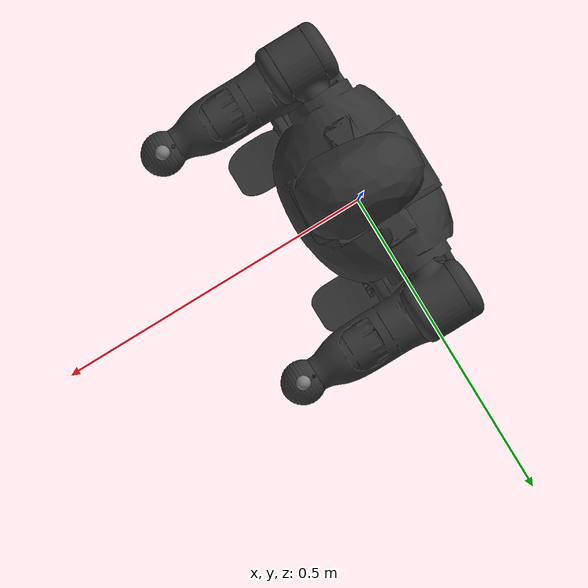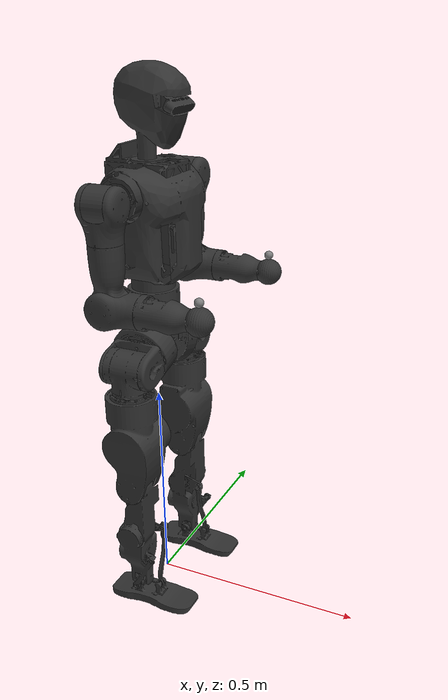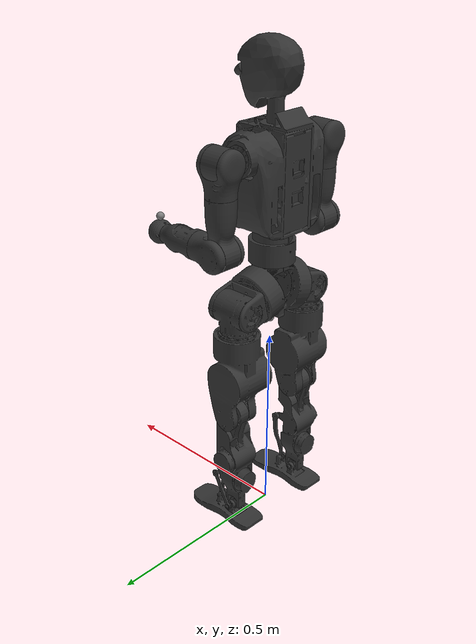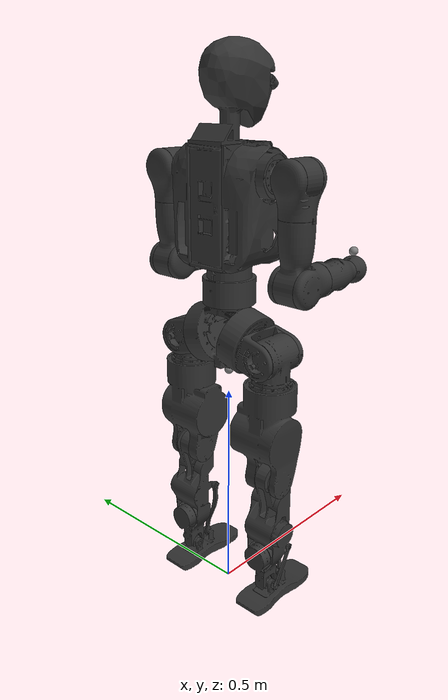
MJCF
<mujoco model="N1_mocap">
    <compiler angle="radian" meshdir="assets" autolimits="true"/>

    <default>
        <default class="N1">
            <default class="visual">
                <geom group="2" type="mesh" density="0" material="silver" contype="0" conaffinity="0"/>
            </default>
            <default class="collision">
                <geom group="3" rgba=".2 .6 .2 .3" contype="1" conaffinity="1"/>
                <default class="foot_capsule">
                    <geom type="capsule" size="0.01"/>
                </default>
            </default>
            <site group="5" rgba="1 0 0 1"/>
        </default>
    </default>

    <asset>
        <material name="silver" rgba="0.7 0.7 0.7 1"/>
        <material name="black" rgba="0.2 0.2 0.2 1"/>
        <mesh name="base_link" content_type="model/stl" file="base_link.STL"/>
        <mesh name="torso_link" content_type="model/stl" file="torso_link.STL"/>
        <mesh name="camera_link" content_type="model/stl" file="camera_link.STL"/>
        <mesh name="imu_link" content_type="model/stl" file="imu_link.STL"/>

        <!-- left leg -->
        <mesh name="left_thigh_pitch_link" content_type="model/stl" file="left_thigh_pitch_link.STL"/>
        <mesh name="left_thigh_roll_link" content_type="model/stl" file="left_thigh_roll_link.STL"/>
        <mesh name="left_thigh_yaw_link" content_type="model/stl" file="left_thigh_yaw_link.STL"/>
        <mesh name="left_shank_pitch_link" content_type="model/stl" file="left_shank_pitch_link.STL"/>
        <mesh name="left_foot_roll_link" content_type="model/stl" file="left_foot_roll_link.STL"/>
        <mesh name="left_foot_pitch_link" content_type="model/stl" file="left_foot_pitch_link.STL"/>

        <!-- right leg -->
        <mesh name="right_thigh_pitch_link" content_type="model/stl" file="right_thigh_pitch_link.STL"/>
        <mesh name="right_thigh_roll_link" content_type="model/stl" file="right_thigh_roll_link.STL"/>
        <mesh name="right_thigh_yaw_link" content_type="model/stl" file="right_thigh_yaw_link.STL"/>
        <mesh name="right_shank_pitch_link" content_type="model/stl" file="right_shank_pitch_link.STL"/>
        <mesh name="right_foot_roll_link" content_type="model/stl" file="right_foot_roll_link.STL"/>
        <mesh name="right_foot_pitch_link" content_type="model/stl" file="right_foot_pitch_link.STL"/>

        <!-- waist -->
        <mesh name="waist_yaw_link" content_type="model/stl" file="waist_yaw_link.STL"/>

        <!-- left arm -->
        <mesh name="left_upper_arm_pitch_link" content_type="model/stl" file="left_upper_arm_pitch_link.STL"/>
        <mesh name="left_upper_arm_roll_link" content_type="model/stl" file="left_upper_arm_roll_link.STL"/>
        <mesh name="left_upper_arm_yaw_link" content_type="model/stl" file="left_upper_arm_yaw_link.STL"/>
        <mesh name="left_lower_arm_pitch_link" content_type="model/stl" file="left_lower_arm_pitch_link.STL"/>
        <mesh name="left_hand_yaw_link" content_type="model/stl" file="left_hand_yaw_link.STL"/>
        <mesh name="left_end_effector_link" content_type="model/stl" file="left_end_effector_link.STL"/>

        <!-- right arm -->
        <mesh name="right_upper_arm_pitch_link" content_type="model/stl" file="right_upper_arm_pitch_link.STL"/>
        <mesh name="right_upper_arm_roll_link" content_type="model/stl" file="right_upper_arm_roll_link.STL"/>
        <mesh name="right_upper_arm_yaw_link" content_type="model/stl" file="right_upper_arm_yaw_link.STL"/>
        <mesh name="right_lower_arm_pitch_link" content_type="model/stl" file="right_lower_arm_pitch_link.STL"/>
        <mesh name="right_hand_yaw_link" content_type="model/stl" file="right_hand_yaw_link.STL"/>
        <mesh name="right_end_effector_link" content_type="model/stl" file="right_end_effector_link.STL"/>
    </asset>

    <worldbody>

        <body name="base_link" pos="0 0 0.70">

            <light pos="0 0 2" mode="trackcom"/>
             <camera name="tracking" pos="1.734 -1.135 .35" xyaxes="0.552 0.834 -0.000 -0.170 0.112 0.979" mode="trackcom"/>
            <inertial pos="0.00025493 1.049e-05 -0.05502" quat="0.704566 0.709615 0.00402273 -0.00405522" mass="3.18"
                      diaginertia="0.0111393 0.00899019 0.00761893"/>
                     <!-- Add freejoint will add additional 7 dofs -->
            <freejoint name="base_free_joint"/>
            <geom class="visual" material="black" mesh="base_link"/>
            <geom name="pelvis_collision" class="collision" type="sphere" size="0.07" pos="0 0 -0.07"/>
            <site name="imu_in_pelvis" size="0.01" pos="0.0 0 -0.1472"/>
            <!-- left leg -->
            <body name="left_thigh_pitch_link" pos="0 0.050453 -0.067365" quat="0.991445 -0.130526 0 0">
                <inertial pos="-0.017114 0.035514 0.00025368" quat="0.233743 0.664829 -0.241027 0.667287" mass="1.31"
                          diaginertia="0.00353445 0.00312547 0.00141578"/>
                <joint name="left_hip_pitch_joint" pos="0 0 0" axis="0 1 0" range="-2.617 2.617"/>
                <geom class="visual" material="black" mesh="left_thigh_pitch_link"/>

                <body name="left_thigh_roll_link" pos="0 0.072 0" quat="0.991445 0.130526 0 0">
                    <inertial pos="-0.0029103 -4.92e-06 -0.020023" quat="0.997816 -0.00139921 -0.0625676 -0.0211339"
                              mass="1.35" diaginertia="0.00189889 0.00182639 0.00129812"/>
                    <joint name="left_hip_roll_joint" pos="0 0 0" axis="1 0 0" range="-0.261 1.57"/>
                    <geom class="visual" material="black" mesh="left_thigh_roll_link"/>

                    <geom name="left_hip_collision" class="collision" type="capsule" size="0.06"
                          fromto="0.02 0 0 0.02 0 -0.07"/>
                    <body name="left_thigh_yaw_link" pos="0 0 -0.0815">
                        <inertial pos="0.0021441 -0.010608 -0.086616" quat="0.468171 -0.0465258 0.0232059 0.882107"
                                  mass="3.37" diaginertia="0.0149854 0.0146941 0.0052015"/>
                        <joint name="left_hip_yaw_joint" pos="0 0 0" axis="0 0 1" range="-2.617 2.617"/>
                        <geom class="visual" material="black" mesh="left_thigh_yaw_link"/>

                        <geom name="left_thigh_collision" class="collision" type="capsule" size="0.06"
                              fromto="-0.0 0 -0.03 -0.0 0 -0.17"/>
                        <body name="left_shank_pitch_link" pos="0 0 -0.2075">
                            <inertial pos="0.0027736 0.0049964 -0.13547" quat="0.865626 -0.00504699 0.0114018 0.500536"
                                      mass="2.21" diaginertia="0.0135888 0.0135126 0.00161696"/>
                            <joint name="left_knee_pitch_joint" pos="0 0 0" axis="0 1 0" range="-0.0872 2.356"/>
                            <geom class="visual" material="black" mesh="left_shank_pitch_link"/>

                            <geom name="left_shin_collision" class="collision" type="capsule" size="0.055"
                                  fromto="0.01 0 0 0.01 0 -0.15"/>
                            <geom name="left_linkage_brace_collision" class="collision" type="capsule" size="0.035"
                                  fromto="0.01 0 -0.2 0.01 0 -0.25"/>
                            <body name="left_foot_roll_link" pos="0 0 -0.28">
                                <inertial pos="0 0.0018625 0" quat="0.5 0.5 -0.5 0.5" mass="0.113"
                                          diaginertia="2.927e-05 2.49e-05 1.175e-05"/>
                                <joint name="left_ankle_roll_joint" pos="0 0 0" axis="1 0 0" range="-0.436 0.436"/>
                                <geom class="visual" material="black" mesh="left_foot_roll_link"/>

                                <body name="left_foot_pitch_link">
                                    <inertial pos="0.031083 -0.00011033 -0.031859"
                                              quat="5.38314e-05 0.70921 -0.0030347 0.704991" mass="0.528"
                                              diaginertia="0.00183246 0.00168042 0.000253637"/>
                                    <site name="left_foot" rgba="1 0 0 1" pos="0.04 0 -0.037"/>
                                    <joint name="left_ankle_pitch_joint" pos="0 0 0" axis="0 1 0" range="-0.785 0.785"/>
                                    <geom class="visual" material="black" mesh="left_foot_pitch_link"/>
                                    <geom name="left_foot1_collision" class="foot_capsule"
                                          fromto="0.1 -0.026 -0.035 0.05 -0.027 -0.035"/>
                                    <geom name="left_foot2_collision" class="foot_capsule"
                                          fromto="-0.044 -0.018 -0.035 0.123 -0.018 -0.035"/>
                                    <geom name="left_foot3_collision" class="foot_capsule"
                                          fromto="-0.052 -0.01 -0.035 0.13 -0.01 -0.035"/>
                                    <geom name="left_foot4_collision" class="foot_capsule"
                                          fromto="-0.054 0 -0.035 0.132 0 -0.035"/>
                                    <geom name="left_foot5_collision" class="foot_capsule"
                                          fromto="-0.052 0.01 -0.035 0.13 0.01 -0.035"/>
                                    <geom name="left_foot6_collision" class="foot_capsule"
                                          fromto="-0.044 0.018 -0.035 0.123 0.018 -0.035"/>
                                    <geom name="left_foot7_collision" class="foot_capsule"
                                          fromto="0.1 0.026 -0.035 0.05 0.026 -0.035"/>
                                </body>
                            </body>
                        </body>
                    </body>
                </body>
            </body>

            <!-- right leg -->
            <body name="right_thigh_pitch_link" pos="0 -0.050453 -0.067365" quat="0.991445 0.130526 0 0">
                <inertial pos="-0.017114 -0.035515 0.0002533" quat="-0.233728 0.66481 0.241038 0.667308" mass="1.31"
                          diaginertia="0.00353425 0.00312543 0.00141582"/>
                <joint name="right_hip_pitch_joint" pos="0 0 0" axis="0 1 0" range="-2.617 2.617"/>
                <geom class="visual" material="black" mesh="right_thigh_pitch_link"/>

                <body name="right_thigh_roll_link" pos="0 -0.072 0" quat="0.991445 -0.130526 0 0">
                    <inertial pos="-0.0029092 1.208e-05 -0.020023" quat="0.997769 -0.000380296 -0.0626363 -0.0230831"
                              mass="1.35" diaginertia="0.00189884 0.00182645 0.00129811"/>
                    <joint name="right_hip_roll_joint" pos="0 0 0" axis="1 0 0" range="-1.57 0.261"/>
                    <geom class="visual" material="black" mesh="right_thigh_roll_link"/>
                    <geom name="right_hip_collision" class="collision" type="capsule" size="0.06"
                          fromto="0.02 0 0 0.02 0 -0.07"/>

                    <body name="right_thigh_yaw_link" pos="0 0 -0.0815">
                        <inertial pos="0.002043 0.010083 -0.086622" quat="0.877122 0.0212301 -0.0463129 0.477557"
                                  mass="3.37" diaginertia="0.0150086 0.0147999 0.00521055"/>
                        <joint name="right_hip_yaw_joint" pos="0 0 0" axis="0 0 1" range="-2.617 2.617"/>
                        <geom class="visual" material="black" mesh="right_thigh_yaw_link"/>
                        <geom name="right_thigh_collision" class="collision" type="capsule" size="0.06"
                              fromto="-0.0 0 -0.03 -0.0 0 -0.17"/>

                        <body name="right_shank_pitch_link" pos="0 0 -0.2075">
                            <inertial pos="0.0026916 -0.004784 -0.13593" quat="0.483728 0.0109122 -0.00494483 0.875136"
                                      mass="2.21" diaginertia="0.0134062 0.0133395 0.00163604"/>
                            <joint name="right_knee_pitch_joint" pos="0 0 0" axis="0 1 0" range="-0.0872 2.356"/>
                            <geom class="visual" material="black" mesh="right_shank_pitch_link"/>
                            <geom name="right_shin_collision" class="collision" type="capsule" size="0.055"
                                  fromto="0.01 0 0 0.01 0 -0.15"/>
                            <geom name="right_linkage_brace_collision" class="collision" type="capsule" size="0.035"
                                  fromto="0.01 0 -0.2 0.01 0 -0.26"/>
                            <body name="right_foot_roll_link" pos="0 0 -0.28">
                                <inertial pos="0 -0.0018793 0" quat="0.5 0.5 -0.5 0.5" mass="0.113"
                                          diaginertia="2.933e-05 2.497e-05 1.175e-05"/>
                                <joint name="right_ankle_roll_joint" pos="0 0 0" axis="1 0 0" range="-0.436 0.436"/>
                                <geom class="visual" material="black" mesh="right_foot_roll_link"/>

                                <body name="right_foot_pitch_link">
                                    <inertial pos="0.031082 0.0001577 -0.031593"
                                              quat="-0.00199687 0.709212 0.00129162 0.704991" mass="0.528"
                                              diaginertia="0.00183246 0.00168033 0.000253623"/>
                                    <site name="right_foot" rgba="1 0 0 1" pos="0.04 0 -0.037"/>
                                    <joint name="right_ankle_pitch_joint" pos="0 0 0" axis="0 1 0"
                                           range="-0.785 0.785"/>
                                    <geom class="visual" material="black" mesh="right_foot_pitch_link"/>

                                    <geom name="right_foot1_collision" class="foot_capsule" fromto="0.1 -0.026 -0.025
                                    0.05 -0.026 -0.025"/>
                                    <geom name="right_foot2_collision" class="foot_capsule"
                                          fromto="-0.044 -0.018 -0.035 0.123 -0.018 -0.035"/>
                                    <geom name="right_foot3_collision" class="foot_capsule"
                                          fromto="-0.052 -0.01 -0.035 0.13 -0.01 -0.035"/>
                                    <geom name="right_foot4_collision" class="foot_capsule"
                                          fromto="-0.054 0 -0.035 0.132 0 -0.035"/>
                                    <geom name="right_foot5_collision" class="foot_capsule"
                                          fromto="-0.052 0.01 -0.035 0.13 0.01 -0.035"/>
                                    <geom name="right_foot6_collision" class="foot_capsule"
                                          fromto="-0.044 0.018 -0.035 0.123 0.018 -0.035"/>
                                    <geom name="right_foot7_collision" class="foot_capsule"
                                          fromto="0.1 0.026 -0.035 0.05 0.026 -0.035"/>
                                </body>
                            </body>
                        </body>
                    </body>
                </body>
            </body>

            <!-- waist -->
            <body name="waist_yaw_link" pos="0 0 0.0256">
                <inertial pos="0.00025493 1.049e-05 -0.05502" quat="0.704566 0.709615 0.00402273 -0.00405522"
                          mass="3.18" diaginertia="0.0111393 0.00899019 0.00761893"/>
                <site name="imu_in_torso" size="0.01" pos="-0.03959 -0.00224 0.14792"/>
                <joint name="waist_yaw_joint" pos="0 0 0" axis="0 0 1" range="-2.617 2.617"/>
                <geom class="visual" material="black" mesh="waist_yaw_link"/>

                <body name="torso_link" pos="0 0 0.2598">
                    <inertial pos="0.0070827 0.00038627 -0.041747" quat="0.999988 0.00410371 0.00174858 0.002149"
                              mass="7.99" diaginertia="0.0818958 0.0707902 0.035398"/>
                    <geom class="visual" material="black" mesh="torso_link"/>
                    <geom name="torso_collision" class="collision" type="capsule" size="0.1"
                          fromto="0.01 0 -0.18 0.01 0 -0.02"/>
                    <geom name="head_collision" class="collision" size="0.07" pos="0 0 0.18"/>

                    <body name="camera_link" pos="0.071343 -0.0048077 0.17959"
                          quat="0.965379 0.00870596 0.258673 -0.032491">
                        <inertial pos="0.011772 0.0016608 2.48e-06" quat="0.512805 0.516489 -0.482706 0.487099"
                                  mass="0.0382" diaginertia="2.48306e-05 2.46608e-05 3.65862e-06"/>
                        <geom class="visual" material="black" mesh="camera_link"/>
                    </body>

                    <!-- left arm -->
                    <body name="left_upper_arm_pitch_link" pos="0 0.09765 0">
                        <inertial pos="-0.00045952 0.060859 7.73e-05" quat="0.704068 0.708238 -0.0156868 0.0494157"
                                  mass="0.885" diaginertia="0.000836529 0.000813953 0.000518948"/>
                        <joint name="left_shoulder_pitch_joint" pos="0 0 0" axis="0 1 0" range="-2.966 2.966"/>
                        <geom class="visual" material="black" mesh="left_upper_arm_pitch_link"/>

                        <body name="left_upper_arm_roll_link" pos="0 0.078 0">
                            <inertial pos="0.0049529 0.00053148 -0.043369" quat="0.711144 0.0399767 0.0425776 0.700616"
                                      mass="0.716" diaginertia="0.00189703 0.00180449 0.000471746"/>
                            <joint name="left_shoulder_roll_joint" pos="0 0 0" axis="1 0 0" range="-0.174 2.792"/>
                            <geom class="visual" material="black" mesh="left_upper_arm_roll_link"/>

                            <body name="left_upper_arm_yaw_link" pos="0 0 -0.1005">
                                <inertial pos="0 -0.00057869 -0.060729" quat="0.671373 -0.00487491 0.00703306 0.74107"
                                          mass="0.913" diaginertia="0.00291415 0.00289523 0.000604574"/>
                                <joint name="left_shoulder_yaw_joint" pos="0 0 0" axis="0 0 1" range="-1.832 1.832"/>
                                <geom class="visual" material="black" mesh="left_upper_arm_yaw_link"/>

                                <geom name="left_shoulder_yaw_collision" class="collision" type="capsule" size="0.04"
                                      fromto="0 0 -0.07 0 0 0.06"/>
                                <body name="left_lower_arm_pitch_link" pos="0 0 -0.1095" quat="0.707105 0 -0.707108 0">
                                    <inertial pos="-0.00053164 0.0049499 -0.04337"
                                              quat="0.998268 -0.0583286 -0.0018086 -0.00739958" mass="0.716"
                                              diaginertia="0.00189663 0.00180416 0.000471669"/>
                                    <joint name="left_elbow_pitch_joint" pos="0 0 0" axis="0 1 0" range="-0.349 1.658"/>
                                    <geom class="visual" material="black" mesh="left_lower_arm_pitch_link"/>
                                    <geom name="left_elbow_yaw_collision" class="collision" type="capsule" size="0.035"
                                          fromto="0.01 0 0.005 0.01 0 -0.05"/>
                                    <body name="left_hand_yaw_link" pos="0 0 -0.1005">
                                        <inertial pos="-0.0020835 6.386e-05 -0.013715"
                                                  quat="0.999837 -0.00132735 -0.00221673 0.0178597" mass="0.44"
                                                  diaginertia="0.000433576 0.000407568 0.000270066"/>
                                        <geom class="visual" material="black" mesh="left_hand_yaw_link"/>
                                        <geom name="left_wrist_collision" class="collision" type="capsule" size="0.035"
                                              fromto="0.01 0 0.01 0.01 0 -0.05"/>
                                        <body name="left_end_effector_link" pos="0 0 -0.1045">
                                            <inertial pos="0.003465 0 0" quat="0.5 0.5 -0.5 0.5" mass="0.0994"
                                                      diaginertia="4.538e-05 3.741e-05 3.741e-05"/>
                                            <site name="left_palm" pos="0.04 0 0" size="0.01"/>
                                            <geom class="visual" material="black" mesh="left_end_effector_link"/>
                                            <geom name="left_hand_collision" class="collision" size="0.03051"
                                                  pos="0.0 -0.005 -0.02 "/>
                                        </body>
                                    </body>
                                </body>
                            </body>
                        </body>
                    </body>

                    <!-- right arm -->
                    <body name="right_upper_arm_pitch_link" pos="0 -0.09765 0">
                        <inertial pos="-0.00045952 -0.060859 -7.73e-05" quat="0.704068 0.708238 0.0156868 -0.0494157"
                                  mass="0.885" diaginertia="0.000836529 0.000813953 0.000518948"/>
                        <geom class="visual" material="black" mesh="right_upper_arm_pitch_link"/>
                        <joint name="right_shoulder_pitch_joint" pos="0 0 0" axis="0 1 0" range="-2.966 2.966"/>

                        <body name="right_upper_arm_roll_link" pos="0 -0.078 0">
                            <inertial pos="0.0049504 -0.0005218 -0.043377" quat="0.700715 0.0424814 0.0400053 0.711051"
                                      mass="0.716" diaginertia="0.00189633 0.00180386 0.000471402"/>
                            <joint name="right_shoulder_roll_joint" pos="0 0 0" axis="1 0 0" range="-2.792 0.174"/>
                            <geom class="visual" material="black" mesh="right_upper_arm_roll_link"/>

                            <body name="right_upper_arm_yaw_link" pos="0 0 -0.1005">
                                <inertial pos="0 0.00055669 -0.060729" quat="0.621814 0.00470192 -0.00715628 0.783118"
                                          mass="0.913" diaginertia="0.00291604 0.00289334 0.000604613"/>
                                <joint name="right_shoulder_yaw_joint" pos="0 0 0" axis="0 0 1" range="-1.832 1.832"/>
                                <geom class="visual" material="black" mesh="right_upper_arm_yaw_link"/>
                                <geom name="right_shoulder_yaw_collision" class="collision" type="capsule" size="0.04"
                                      fromto="0 0 -0.07 0 0 0.06"/>

                                <body name="right_lower_arm_pitch_link" pos="0 0 -0.1095" quat="0.707105 0 -0.707108 0">
                                    <inertial pos="-0.0005218 -0.0049504 -0.043377"
                                              quat="0.998269 0.0583269 -0.00175091 0.00730818" mass="0.716"
                                              diaginertia="0.00189633 0.00180386 0.000471402"/>
                                    <joint name="right_elbow_pitch_joint" pos="0 0 0" axis="0 1 0"
                                           range="-0.349 1.658"/>
                                    <geom class="visual" material="black" mesh="right_lower_arm_pitch_link"/>
                                    <geom name="right_elbow_yaw_collision" class="collision" type="capsule" size="0.035"
                                          fromto="0.01 0 0.005 0.01 0 -0.05"/>
                                    <body name="right_hand_yaw_link" pos="0 0 -0.1005">
                                        <inertial pos="-0.00020719 -1.94e-05 -0.013715"
                                                  quat="0.999257 -0.00336645 -0.00376299 0.0381993" mass="0.44"
                                                  diaginertia="0.000432418 0.000408738 0.000270055"/>
                                        <geom class="visual" material="black" mesh="right_hand_yaw_link"/>
                                        <geom name="right_wrist_collision" class="collision" type="capsule" size="0.035"
                                              fromto="0.01 0 0.01 0.01 0 -0.05"/>

                                        <body name="right_end_effector_link" pos="0 0 -0.1045">
                                            <inertial pos="0.003465 0 0" quat="0.5 0.5 -0.5 0.5" mass="0.0994"
                                                      diaginertia="4.538e-05 3.741e-05 3.741e-05"/>
                                            <site name="right_palm" pos="0.04 0 0" size="0.01"/>
                                            <geom class="visual" material="black" mesh="right_end_effector_link"/>
                                            <geom name="right_hand_collision" class="collision" size="0.03051"
                                                  pos="0.0 -0.005 -0.01 "/>
                                        </body>
                                    </body>
                                </body>
                            </body>
                        </body>
                    </body>
                </body>
            </body>
        </body>
    </worldbody>
    <contact>
        <exclude body1="left_lower_arm_pitch_link" body2="left_hand_yaw_link"/>
        <exclude body1="right_lower_arm_pitch_link" body2="right_hand_yaw_link"/>
        <exclude body1="base_link" body2="left_thigh_roll_link"/>
        <exclude body1="base_link" body2="right_thigh_roll_link"/>
    </contact>
    <sensor>
    <gyro name="imu_ang_vel" site="imu_in_pelvis"/>
    <velocimeter name="imu_lin_vel" site="imu_in_pelvis"/>
    <accelerometer name="imu_lin_acc" site="imu_in_pelvis"/>
    <subtreeangmom name="root_angmom" body="base_link"/>
  </sensor>
</mujoco>
